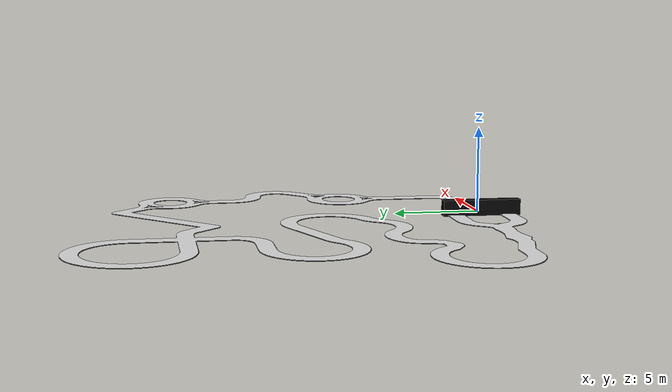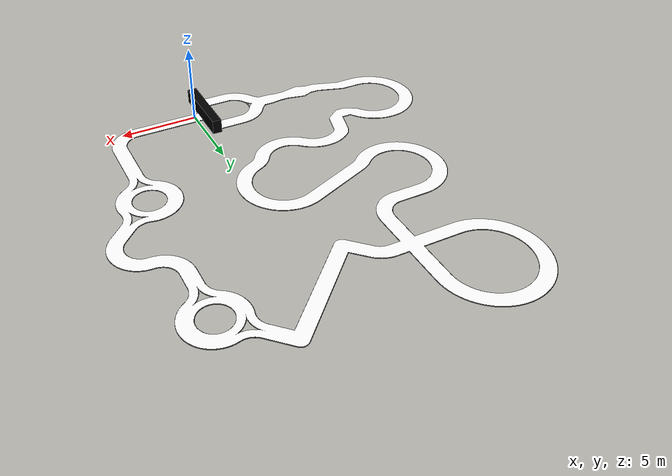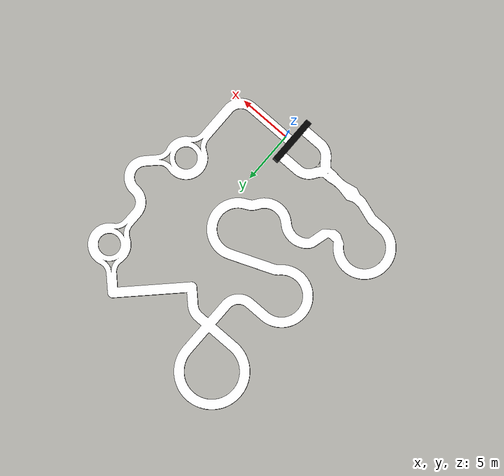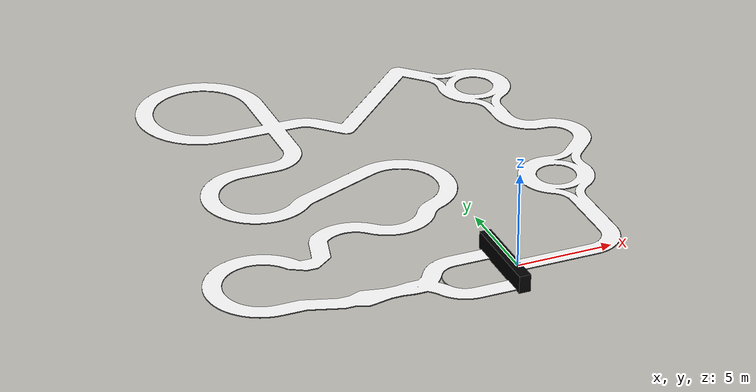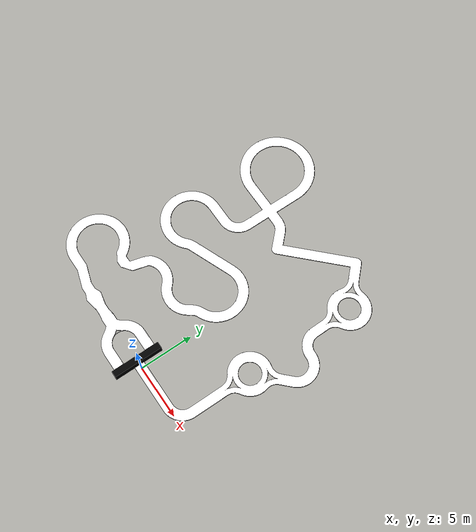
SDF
<?xml version="1.0"?>
<sdf version="1.10">
    <model name="NXP_AIM_S3_Qualifiers_Track">
        <static>false</static>
        <link name="main">
            <collision name="collision">
                <pose>0 0 0 0 0 0</pose>
                <geometry>
                    <plane>
                        <normal>0 0 1</normal>
                        <size>100 100</size>
                    </plane>
                </geometry>
            </collision>
            <visual name="NXP_AIM_S3_Qualifiers_Track">
                <pose>-4 -0.48 -0.065 0 0 0</pose>
                <geometry>
                    <mesh>
                        <scale>1 1 1</scale>
                        <uri>meshes/NXP_AIM_S3_Qualifiers_Track.dae</uri>
                    </mesh>
                </geometry>
            </visual>
        </link>

        <joint name="world_joint" type="fixed">
            <parent>world</parent>
            <child>main</child>
        </joint>
    </model>
</sdf>
